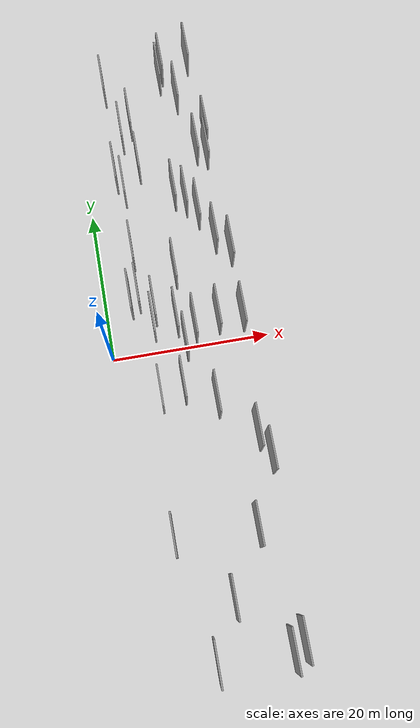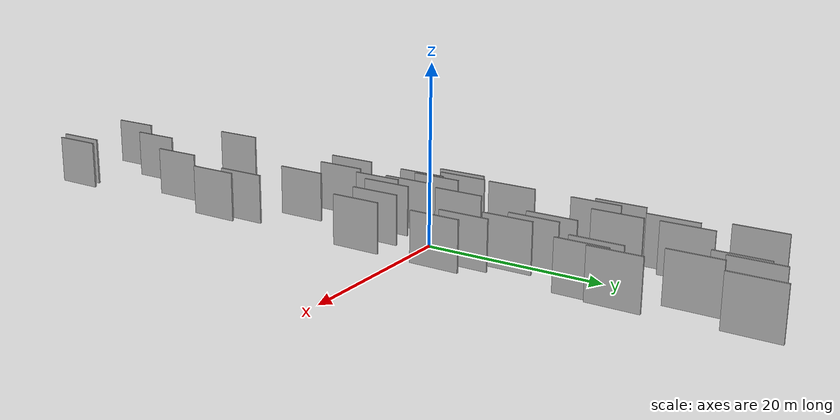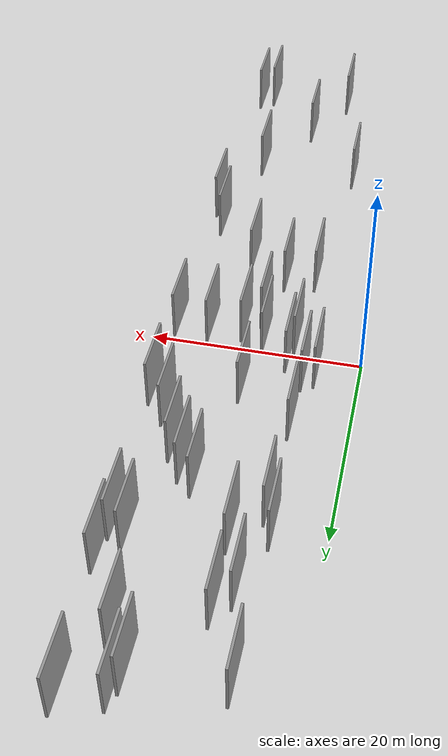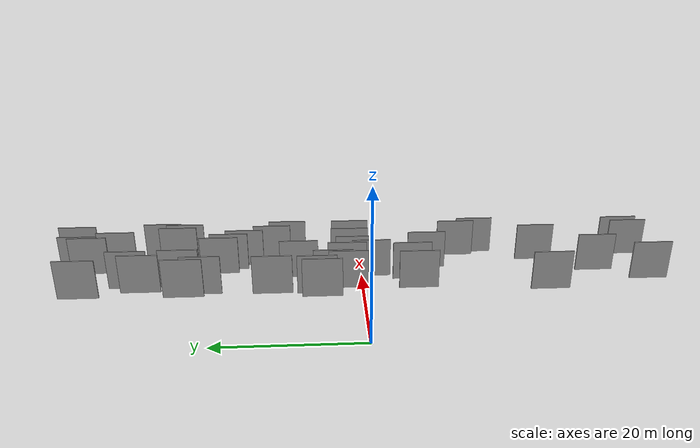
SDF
<sdf version="1.6">
 <world name="default">
  <scene>
   <sky><clouds><speed>12</speed></clouds></sky>
   <ambient>0.4 0.4 0.4 1</ambient>
   <background>0.7 0.7 0.7 1</background>
   <shadows>1</shadows>
  </scene>
  <gravity>0 0 -9.8066</gravity>
  <magnetic_field>6e-06 2.3e-05 -4.2e-05</magnetic_field>
  <physics default="0" name="default_physics" type="ode">
   <ode>
    <solver>
     <type>quick</type>
     <iters>10</iters>
     <sor>1.0</sor>
     <use_dynamic_moi_rescaling>0</use_dynamic_moi_rescaling>
    </solver>
    <constraints>
     <cfm>0</cfm>
     <erp>0.2</erp>
     <contact_max_correcting_vel>100</contact_max_correcting_vel>
     <contact_surface_layer>0.001</contact_surface_layer>
    </constraints>
   </ode>
   <max_step_size>0.004</max_step_size>
   <real_time_factor>1</real_time_factor>
   <real_time_update_rate>250</real_time_update_rate>
  </physics>
  <light name="sun" type="directional">
   <pose>0 0 10 0 0 0</pose>
   <diffuse>0.8 0.8 0.8 1</diffuse>
   <specular>0.2 0.2 0.2 1</specular>
   <attenuation>
    <range>1000</range>
    <constant>0.9</constant>
    <linear>0.01</linear>
    <quadratic>0.001</quadratic>
   </attenuation>
   <direction>-0.5 0.1 -0.9</direction>
  </light>
  <model name="grey_wall_1">
   <static>1</static>
   <pose>16.1266 -36.1026 5.0 0.000000 0.000000 1.570796</pose>
   <link name="link">
    <pose>0 0 2.50 0 0 0</pose>
    <collision name="collision"><geometry><box><size>5.00 0.2 5.00</size></box></geometry></collision>
    <visual name="visual">
     <cast_shadows>0</cast_shadows>
     <geometry><box><size>5.00 0.2 5.00</size></box></geometry>
     <material>
      <script>
       <uri>model://grey_wall/materials/scripts</uri>
       <uri>model://grey_wall/materials/textures</uri>
       <name>vrc/grey_wall</name>
      </script>
     </material>
    </visual>
   </link>
  </model>
  <model name="grey_wall_2">
   <static>1</static>
   <pose>16.7038 10.5861 5.0 0.000000 0.000000 1.570796</pose>
   <link name="link">
    <pose>0 0 2.50 0 0 0</pose>
    <collision name="collision"><geometry><box><size>5.00 0.2 5.00</size></box></geometry></collision>
    <visual name="visual">
     <cast_shadows>0</cast_shadows>
     <geometry><box><size>5.00 0.2 5.00</size></box></geometry>
     <material>
      <script>
       <uri>model://grey_wall/materials/scripts</uri>
       <uri>model://grey_wall/materials/textures</uri>
       <name>vrc/grey_wall</name>
      </script>
     </material>
    </visual>
   </link>
  </model>
  <model name="grey_wall_3">
   <static>1</static>
   <pose>4.0169 -23.0541 5.0 0.000000 0.000000 1.570796</pose>
   <link name="link">
    <pose>0 0 2.50 0 0 0</pose>
    <collision name="collision"><geometry><box><size>5.00 0.2 5.00</size></box></geometry></collision>
    <visual name="visual">
     <cast_shadows>0</cast_shadows>
     <geometry><box><size>5.00 0.2 5.00</size></box></geometry>
     <material>
      <script>
       <uri>model://grey_wall/materials/scripts</uri>
       <uri>model://grey_wall/materials/textures</uri>
       <name>vrc/grey_wall</name>
      </script>
     </material>
    </visual>
   </link>
  </model>
  <model name="grey_wall_4">
   <static>1</static>
   <pose>8.0384 -5.8655 5.0 0.000000 0.000000 1.570796</pose>
   <link name="link">
    <pose>0 0 2.50 0 0 0</pose>
    <collision name="collision"><geometry><box><size>5.00 0.2 5.00</size></box></geometry></collision>
    <visual name="visual">
     <cast_shadows>0</cast_shadows>
     <geometry><box><size>5.00 0.2 5.00</size></box></geometry>
     <material>
      <script>
       <uri>model://grey_wall/materials/scripts</uri>
       <uri>model://grey_wall/materials/textures</uri>
       <name>vrc/grey_wall</name>
      </script>
     </material>
    </visual>
   </link>
  </model>
  <model name="grey_wall_5">
   <static>1</static>
   <pose>13.6140 33.2601 5.0 0.000000 0.000000 1.570796</pose>
   <link name="link">
    <pose>0 0 2.50 0 0 0</pose>
    <collision name="collision"><geometry><box><size>5.00 0.2 5.00</size></box></geometry></collision>
    <visual name="visual">
     <cast_shadows>0</cast_shadows>
     <geometry><box><size>5.00 0.2 5.00</size></box></geometry>
     <material>
      <script>
       <uri>model://grey_wall/materials/scripts</uri>
       <uri>model://grey_wall/materials/textures</uri>
       <name>vrc/grey_wall</name>
      </script>
     </material>
    </visual>
   </link>
  </model>
  <model name="grey_wall_6">
   <static>1</static>
   <pose>11.8164 36.4727 5.0 0.000000 0.000000 1.570796</pose>
   <link name="link">
    <pose>0 0 2.50 0 0 0</pose>
    <collision name="collision"><geometry><box><size>5.00 0.2 5.00</size></box></geometry></collision>
    <visual name="visual">
     <cast_shadows>0</cast_shadows>
     <geometry><box><size>5.00 0.2 5.00</size></box></geometry>
     <material>
      <script>
       <uri>model://grey_wall/materials/scripts</uri>
       <uri>model://grey_wall/materials/textures</uri>
       <name>vrc/grey_wall</name>
      </script>
     </material>
    </visual>
   </link>
  </model>
  <model name="grey_wall_7">
   <static>1</static>
   <pose>13.5717 2.0889 5.0 0.000000 0.000000 1.570796</pose>
   <link name="link">
    <pose>0 0 2.50 0 0 0</pose>
    <collision name="collision"><geometry><box><size>5.00 0.2 5.00</size></box></geometry></collision>
    <visual name="visual">
     <cast_shadows>0</cast_shadows>
     <geometry><box><size>5.00 0.2 5.00</size></box></geometry>
     <material>
      <script>
       <uri>model://grey_wall/materials/scripts</uri>
       <uri>model://grey_wall/materials/textures</uri>
       <name>vrc/grey_wall</name>
      </script>
     </material>
    </visual>
   </link>
  </model>
  <model name="grey_wall_8">
   <static>1</static>
   <pose>14.9016 25.2825 5.0 0.000000 0.000000 1.570796</pose>
   <link name="link">
    <pose>0 0 2.50 0 0 0</pose>
    <collision name="collision"><geometry><box><size>5.00 0.2 5.00</size></box></geometry></collision>
    <visual name="visual">
     <cast_shadows>0</cast_shadows>
     <geometry><box><size>5.00 0.2 5.00</size></box></geometry>
     <material>
      <script>
       <uri>model://grey_wall/materials/scripts</uri>
       <uri>model://grey_wall/materials/textures</uri>
       <name>vrc/grey_wall</name>
      </script>
     </material>
    </visual>
   </link>
  </model>
  <model name="grey_wall_9">
   <static>1</static>
   <pose>4.8498 20.8579 5.0 0.000000 0.000000 1.570796</pose>
   <link name="link">
    <pose>0 0 2.50 0 0 0</pose>
    <collision name="collision"><geometry><box><size>5.00 0.2 5.00</size></box></geometry></collision>
    <visual name="visual">
     <cast_shadows>0</cast_shadows>
     <geometry><box><size>5.00 0.2 5.00</size></box></geometry>
     <material>
      <script>
       <uri>model://grey_wall/materials/scripts</uri>
       <uri>model://grey_wall/materials/textures</uri>
       <name>vrc/grey_wall</name>
      </script>
     </material>
    </visual>
   </link>
  </model>
  <model name="grey_wall_10">
   <static>1</static>
   <pose>11.6413 -8.1882 5.0 0.000000 0.000000 1.570796</pose>
   <link name="link">
    <pose>0 0 2.50 0 0 0</pose>
    <collision name="collision"><geometry><box><size>5.00 0.2 5.00</size></box></geometry></collision>
    <visual name="visual">
     <cast_shadows>0</cast_shadows>
     <geometry><box><size>5.00 0.2 5.00</size></box></geometry>
     <material>
      <script>
       <uri>model://grey_wall/materials/scripts</uri>
       <uri>model://grey_wall/materials/textures</uri>
       <name>vrc/grey_wall</name>
      </script>
     </material>
    </visual>
   </link>
  </model>
  <model name="grey_wall_11">
   <static>1</static>
   <pose>14.7778 -36.9344 5.0 0.000000 0.000000 1.570796</pose>
   <link name="link">
    <pose>0 0 2.50 0 0 0</pose>
    <collision name="collision"><geometry><box><size>5.00 0.2 5.00</size></box></geometry></collision>
    <visual name="visual">
     <cast_shadows>0</cast_shadows>
     <geometry><box><size>5.00 0.2 5.00</size></box></geometry>
     <material>
      <script>
       <uri>model://grey_wall/materials/scripts</uri>
       <uri>model://grey_wall/materials/textures</uri>
       <name>vrc/grey_wall</name>
      </script>
     </material>
    </visual>
   </link>
  </model>
  <model name="grey_wall_12">
   <static>1</static>
   <pose>4.3469 35.8482 5.0 0.000000 0.000000 1.570796</pose>
   <link name="link">
    <pose>0 0 2.50 0 0 0</pose>
    <collision name="collision"><geometry><box><size>5.00 0.2 5.00</size></box></geometry></collision>
    <visual name="visual">
     <cast_shadows>0</cast_shadows>
     <geometry><box><size>5.00 0.2 5.00</size></box></geometry>
     <material>
      <script>
       <uri>model://grey_wall/materials/scripts</uri>
       <uri>model://grey_wall/materials/textures</uri>
       <name>vrc/grey_wall</name>
      </script>
     </material>
    </visual>
   </link>
  </model>
  <model name="grey_wall_13">
   <static>1</static>
   <pose>8.5442 2.5810 5.0 0.000000 0.000000 1.570796</pose>
   <link name="link">
    <pose>0 0 2.50 0 0 0</pose>
    <collision name="collision"><geometry><box><size>5.00 0.2 5.00</size></box></geometry></collision>
    <visual name="visual">
     <cast_shadows>0</cast_shadows>
     <geometry><box><size>5.00 0.2 5.00</size></box></geometry>
     <material>
      <script>
       <uri>model://grey_wall/materials/scripts</uri>
       <uri>model://grey_wall/materials/textures</uri>
       <name>vrc/grey_wall</name>
      </script>
     </material>
    </visual>
   </link>
  </model>
  <model name="grey_wall_14">
   <static>1</static>
   <pose>15.6510 -12.7972 5.0 0.000000 0.000000 1.570796</pose>
   <link name="link">
    <pose>0 0 2.50 0 0 0</pose>
    <collision name="collision"><geometry><box><size>5.00 0.2 5.00</size></box></geometry></collision>
    <visual name="visual">
     <cast_shadows>0</cast_shadows>
     <geometry><box><size>5.00 0.2 5.00</size></box></geometry>
     <material>
      <script>
       <uri>model://grey_wall/materials/scripts</uri>
       <uri>model://grey_wall/materials/textures</uri>
       <name>vrc/grey_wall</name>
      </script>
     </material>
    </visual>
   </link>
  </model>
  <model name="grey_wall_15">
   <static>1</static>
   <pose>12.2945 18.1889 5.0 0.000000 0.000000 1.570796</pose>
   <link name="link">
    <pose>0 0 2.50 0 0 0</pose>
    <collision name="collision"><geometry><box><size>5.00 0.2 5.00</size></box></geometry></collision>
    <visual name="visual">
     <cast_shadows>0</cast_shadows>
     <geometry><box><size>5.00 0.2 5.00</size></box></geometry>
     <material>
      <script>
       <uri>model://grey_wall/materials/scripts</uri>
       <uri>model://grey_wall/materials/textures</uri>
       <name>vrc/grey_wall</name>
      </script>
     </material>
    </visual>
   </link>
  </model>
  <model name="grey_wall_16">
   <static>1</static>
   <pose>6.1222 4.4363 5.0 0.000000 0.000000 1.570796</pose>
   <link name="link">
    <pose>0 0 2.50 0 0 0</pose>
    <collision name="collision"><geometry><box><size>5.00 0.2 5.00</size></box></geometry></collision>
    <visual name="visual">
     <cast_shadows>0</cast_shadows>
     <geometry><box><size>5.00 0.2 5.00</size></box></geometry>
     <material>
      <script>
       <uri>model://grey_wall/materials/scripts</uri>
       <uri>model://grey_wall/materials/textures</uri>
       <name>vrc/grey_wall</name>
      </script>
     </material>
    </visual>
   </link>
  </model>
  <model name="grey_wall_17">
   <static>1</static>
   <pose>9.3733 8.8212 5.0 0.000000 0.000000 1.570796</pose>
   <link name="link">
    <pose>0 0 2.50 0 0 0</pose>
    <collision name="collision"><geometry><box><size>5.00 0.2 5.00</size></box></geometry></collision>
    <visual name="visual">
     <cast_shadows>0</cast_shadows>
     <geometry><box><size>5.00 0.2 5.00</size></box></geometry>
     <material>
      <script>
       <uri>model://grey_wall/materials/scripts</uri>
       <uri>model://grey_wall/materials/textures</uri>
       <name>vrc/grey_wall</name>
      </script>
     </material>
    </visual>
   </link>
  </model>
  <model name="grey_wall_18">
   <static>1</static>
   <pose>10.6159 1.4685 5.0 0.000000 0.000000 1.570796</pose>
   <link name="link">
    <pose>0 0 2.50 0 0 0</pose>
    <collision name="collision"><geometry><box><size>5.00 0.2 5.00</size></box></geometry></collision>
    <visual name="visual">
     <cast_shadows>0</cast_shadows>
     <geometry><box><size>5.00 0.2 5.00</size></box></geometry>
     <material>
      <script>
       <uri>model://grey_wall/materials/scripts</uri>
       <uri>model://grey_wall/materials/textures</uri>
       <name>vrc/grey_wall</name>
      </script>
     </material>
    </visual>
   </link>
  </model>
  <model name="grey_wall_19">
   <static>1</static>
   <pose>7.0047 30.3213 5.0 0.000000 0.000000 1.570796</pose>
   <link name="link">
    <pose>0 0 2.50 0 0 0</pose>
    <collision name="collision"><geometry><box><size>5.00 0.2 5.00</size></box></geometry></collision>
    <visual name="visual">
     <cast_shadows>0</cast_shadows>
     <geometry><box><size>5.00 0.2 5.00</size></box></geometry>
     <material>
      <script>
       <uri>model://grey_wall/materials/scripts</uri>
       <uri>model://grey_wall/materials/textures</uri>
       <name>vrc/grey_wall</name>
      </script>
     </material>
    </visual>
   </link>
  </model>
  <model name="grey_wall_20">
   <static>1</static>
   <pose>16.1116 24.4967 5.0 0.000000 0.000000 1.570796</pose>
   <link name="link">
    <pose>0 0 2.50 0 0 0</pose>
    <collision name="collision"><geometry><box><size>5.00 0.2 5.00</size></box></geometry></collision>
    <visual name="visual">
     <cast_shadows>0</cast_shadows>
     <geometry><box><size>5.00 0.2 5.00</size></box></geometry>
     <material>
      <script>
       <uri>model://grey_wall/materials/scripts</uri>
       <uri>model://grey_wall/materials/textures</uri>
       <name>vrc/grey_wall</name>
      </script>
     </material>
    </visual>
   </link>
  </model>
  <model name="grey_wall_21">
   <static>1</static>
   <pose>16.5672 1.9388 5.0 0.000000 0.000000 1.570796</pose>
   <link name="link">
    <pose>0 0 2.50 0 0 0</pose>
    <collision name="collision"><geometry><box><size>5.00 0.2 5.00</size></box></geometry></collision>
    <visual name="visual">
     <cast_shadows>0</cast_shadows>
     <geometry><box><size>5.00 0.2 5.00</size></box></geometry>
     <material>
      <script>
       <uri>model://grey_wall/materials/scripts</uri>
       <uri>model://grey_wall/materials/textures</uri>
       <name>vrc/grey_wall</name>
      </script>
     </material>
    </visual>
   </link>
  </model>
  <model name="grey_wall_22">
   <static>1</static>
   <pose>4.5802 12.0188 5.0 0.000000 0.000000 1.570796</pose>
   <link name="link">
    <pose>0 0 2.50 0 0 0</pose>
    <collision name="collision"><geometry><box><size>5.00 0.2 5.00</size></box></geometry></collision>
    <visual name="visual">
     <cast_shadows>0</cast_shadows>
     <geometry><box><size>5.00 0.2 5.00</size></box></geometry>
     <material>
      <script>
       <uri>model://grey_wall/materials/scripts</uri>
       <uri>model://grey_wall/materials/textures</uri>
       <name>vrc/grey_wall</name>
      </script>
     </material>
    </visual>
   </link>
  </model>
  <model name="grey_wall_23">
   <static>1</static>
   <pose>5.6724 28.5549 5.0 0.000000 0.000000 1.570796</pose>
   <link name="link">
    <pose>0 0 2.50 0 0 0</pose>
    <collision name="collision"><geometry><box><size>5.00 0.2 5.00</size></box></geometry></collision>
    <visual name="visual">
     <cast_shadows>0</cast_shadows>
     <geometry><box><size>5.00 0.2 5.00</size></box></geometry>
     <material>
      <script>
       <uri>model://grey_wall/materials/scripts</uri>
       <uri>model://grey_wall/materials/textures</uri>
       <name>vrc/grey_wall</name>
      </script>
     </material>
    </visual>
   </link>
  </model>
  <model name="grey_wall_24">
   <static>1</static>
   <pose>7.1501 23.9227 5.0 0.000000 0.000000 1.570796</pose>
   <link name="link">
    <pose>0 0 2.50 0 0 0</pose>
    <collision name="collision"><geometry><box><size>5.00 0.2 5.00</size></box></geometry></collision>
    <visual name="visual">
     <cast_shadows>0</cast_shadows>
     <geometry><box><size>5.00 0.2 5.00</size></box></geometry>
     <material>
      <script>
       <uri>model://grey_wall/materials/scripts</uri>
       <uri>model://grey_wall/materials/textures</uri>
       <name>vrc/grey_wall</name>
      </script>
     </material>
    </visual>
   </link>
  </model>
  <model name="grey_wall_25">
   <static>1</static>
   <pose>9.1840 -0.5984 5.0 0.000000 0.000000 1.570796</pose>
   <link name="link">
    <pose>0 0 2.50 0 0 0</pose>
    <collision name="collision"><geometry><box><size>5.00 0.2 5.00</size></box></geometry></collision>
    <visual name="visual">
     <cast_shadows>0</cast_shadows>
     <geometry><box><size>5.00 0.2 5.00</size></box></geometry>
     <material>
      <script>
       <uri>model://grey_wall/materials/scripts</uri>
       <uri>model://grey_wall/materials/textures</uri>
       <name>vrc/grey_wall</name>
      </script>
     </material>
    </visual>
   </link>
  </model>
  <model name="grey_wall_26">
   <static>1</static>
   <pose>3.4132 5.8115 5.0 0.000000 0.000000 1.570796</pose>
   <link name="link">
    <pose>0 0 2.50 0 0 0</pose>
    <collision name="collision"><geometry><box><size>5.00 0.2 5.00</size></box></geometry></collision>
    <visual name="visual">
     <cast_shadows>0</cast_shadows>
     <geometry><box><size>5.00 0.2 5.00</size></box></geometry>
     <material>
      <script>
       <uri>model://grey_wall/materials/scripts</uri>
       <uri>model://grey_wall/materials/textures</uri>
       <name>vrc/grey_wall</name>
      </script>
     </material>
    </visual>
   </link>
  </model>
  <model name="grey_wall_27">
   <static>1</static>
   <pose>11.0145 19.3353 5.0 0.000000 0.000000 1.570796</pose>
   <link name="link">
    <pose>0 0 2.50 0 0 0</pose>
    <collision name="collision"><geometry><box><size>5.00 0.2 5.00</size></box></geometry></collision>
    <visual name="visual">
     <cast_shadows>0</cast_shadows>
     <geometry><box><size>5.00 0.2 5.00</size></box></geometry>
     <material>
      <script>
       <uri>model://grey_wall/materials/scripts</uri>
       <uri>model://grey_wall/materials/textures</uri>
       <name>vrc/grey_wall</name>
      </script>
     </material>
    </visual>
   </link>
  </model>
  <model name="grey_wall_28">
   <static>1</static>
   <pose>4.0725 22.9733 5.0 0.000000 0.000000 1.570796</pose>
   <link name="link">
    <pose>0 0 2.50 0 0 0</pose>
    <collision name="collision"><geometry><box><size>5.00 0.2 5.00</size></box></geometry></collision>
    <visual name="visual">
     <cast_shadows>0</cast_shadows>
     <geometry><box><size>5.00 0.2 5.00</size></box></geometry>
     <material>
      <script>
       <uri>model://grey_wall/materials/scripts</uri>
       <uri>model://grey_wall/materials/textures</uri>
       <name>vrc/grey_wall</name>
      </script>
     </material>
    </visual>
   </link>
  </model>
  <model name="grey_wall_29">
   <static>1</static>
   <pose>5.7089 2.4742 5.0 0.000000 0.000000 1.570796</pose>
   <link name="link">
    <pose>0 0 2.50 0 0 0</pose>
    <collision name="collision"><geometry><box><size>5.00 0.2 5.00</size></box></geometry></collision>
    <visual name="visual">
     <cast_shadows>0</cast_shadows>
     <geometry><box><size>5.00 0.2 5.00</size></box></geometry>
     <material>
      <script>
       <uri>model://grey_wall/materials/scripts</uri>
       <uri>model://grey_wall/materials/textures</uri>
       <name>vrc/grey_wall</name>
      </script>
     </material>
    </visual>
   </link>
  </model>
  <model name="grey_wall_30">
   <static>1</static>
   <pose>15.9378 38.8845 5.0 0.000000 0.000000 1.570796</pose>
   <link name="link">
    <pose>0 0 2.50 0 0 0</pose>
    <collision name="collision"><geometry><box><size>5.00 0.2 5.00</size></box></geometry></collision>
    <visual name="visual">
     <cast_shadows>0</cast_shadows>
     <geometry><box><size>5.00 0.2 5.00</size></box></geometry>
     <material>
      <script>
       <uri>model://grey_wall/materials/scripts</uri>
       <uri>model://grey_wall/materials/textures</uri>
       <name>vrc/grey_wall</name>
      </script>
     </material>
    </visual>
   </link>
  </model>
  <model name="grey_wall_31">
   <static>1</static>
   <pose>16.6541 -15.6185 5.0 0.000000 0.000000 1.570796</pose>
   <link name="link">
    <pose>0 0 2.50 0 0 0</pose>
    <collision name="collision"><geometry><box><size>5.00 0.2 5.00</size></box></geometry></collision>
    <visual name="visual">
     <cast_shadows>0</cast_shadows>
     <geometry><box><size>5.00 0.2 5.00</size></box></geometry>
     <material>
      <script>
       <uri>model://grey_wall/materials/scripts</uri>
       <uri>model://grey_wall/materials/textures</uri>
       <name>vrc/grey_wall</name>
      </script>
     </material>
    </visual>
   </link>
  </model>
  <model name="grey_wall_32">
   <static>1</static>
   <pose>13.5509 -23.4916 5.0 0.000000 0.000000 1.570796</pose>
   <link name="link">
    <pose>0 0 2.50 0 0 0</pose>
    <collision name="collision"><geometry><box><size>5.00 0.2 5.00</size></box></geometry></collision>
    <visual name="visual">
     <cast_shadows>0</cast_shadows>
     <geometry><box><size>5.00 0.2 5.00</size></box></geometry>
     <material>
      <script>
       <uri>model://grey_wall/materials/scripts</uri>
       <uri>model://grey_wall/materials/textures</uri>
       <name>vrc/grey_wall</name>
      </script>
     </material>
    </visual>
   </link>
  </model>
  <model name="grey_wall_33">
   <static>1</static>
   <pose>15.0593 12.6275 5.0 0.000000 0.000000 1.570796</pose>
   <link name="link">
    <pose>0 0 2.50 0 0 0</pose>
    <collision name="collision"><geometry><box><size>5.00 0.2 5.00</size></box></geometry></collision>
    <visual name="visual">
     <cast_shadows>0</cast_shadows>
     <geometry><box><size>5.00 0.2 5.00</size></box></geometry>
     <material>
      <script>
       <uri>model://grey_wall/materials/scripts</uri>
       <uri>model://grey_wall/materials/textures</uri>
       <name>vrc/grey_wall</name>
      </script>
     </material>
    </visual>
   </link>
  </model>
  <model name="grey_wall_34">
   <static>1</static>
   <pose>4.4309 6.4372 5.0 0.000000 0.000000 1.570796</pose>
   <link name="link">
    <pose>0 0 2.50 0 0 0</pose>
    <collision name="collision"><geometry><box><size>5.00 0.2 5.00</size></box></geometry></collision>
    <visual name="visual">
     <cast_shadows>0</cast_shadows>
     <geometry><box><size>5.00 0.2 5.00</size></box></geometry>
     <material>
      <script>
       <uri>model://grey_wall/materials/scripts</uri>
       <uri>model://grey_wall/materials/textures</uri>
       <name>vrc/grey_wall</name>
      </script>
     </material>
    </visual>
   </link>
  </model>
  <model name="grey_wall_35">
   <static>1</static>
   <pose>16.4888 27.5898 5.0 0.000000 0.000000 1.570796</pose>
   <link name="link">
    <pose>0 0 2.50 0 0 0</pose>
    <collision name="collision"><geometry><box><size>5.00 0.2 5.00</size></box></geometry></collision>
    <visual name="visual">
     <cast_shadows>0</cast_shadows>
     <geometry><box><size>5.00 0.2 5.00</size></box></geometry>
     <material>
      <script>
       <uri>model://grey_wall/materials/scripts</uri>
       <uri>model://grey_wall/materials/textures</uri>
       <name>vrc/grey_wall</name>
      </script>
     </material>
    </visual>
   </link>
  </model>
  <model name="grey_wall_36">
   <static>1</static>
   <pose>13.5435 16.2440 5.0 0.000000 0.000000 1.570796</pose>
   <link name="link">
    <pose>0 0 2.50 0 0 0</pose>
    <collision name="collision"><geometry><box><size>5.00 0.2 5.00</size></box></geometry></collision>
    <visual name="visual">
     <cast_shadows>0</cast_shadows>
     <geometry><box><size>5.00 0.2 5.00</size></box></geometry>
     <material>
      <script>
       <uri>model://grey_wall/materials/scripts</uri>
       <uri>model://grey_wall/materials/textures</uri>
       <name>vrc/grey_wall</name>
      </script>
     </material>
    </visual>
   </link>
  </model>
  <model name="grey_wall_37">
   <static>1</static>
   <pose>6.4527 -36.8047 5.0 0.000000 0.000000 1.570796</pose>
   <link name="link">
    <pose>0 0 2.50 0 0 0</pose>
    <collision name="collision"><geometry><box><size>5.00 0.2 5.00</size></box></geometry></collision>
    <visual name="visual">
     <cast_shadows>0</cast_shadows>
     <geometry><box><size>5.00 0.2 5.00</size></box></geometry>
     <material>
      <script>
       <uri>model://grey_wall/materials/scripts</uri>
       <uri>model://grey_wall/materials/textures</uri>
       <name>vrc/grey_wall</name>
      </script>
     </material>
    </visual>
   </link>
  </model>
  <model name="grey_wall_38">
   <static>1</static>
   <pose>9.4696 -30.6101 5.0 0.000000 0.000000 1.570796</pose>
   <link name="link">
    <pose>0 0 2.50 0 0 0</pose>
    <collision name="collision"><geometry><box><size>5.00 0.2 5.00</size></box></geometry></collision>
    <visual name="visual">
     <cast_shadows>0</cast_shadows>
     <geometry><box><size>5.00 0.2 5.00</size></box></geometry>
     <material>
      <script>
       <uri>model://grey_wall/materials/scripts</uri>
       <uri>model://grey_wall/materials/textures</uri>
       <name>vrc/grey_wall</name>
      </script>
     </material>
    </visual>
   </link>
  </model>
  <model name="grey_wall_39">
   <static>1</static>
   <pose>5.2627 -6.4195 5.0 0.000000 0.000000 1.570796</pose>
   <link name="link">
    <pose>0 0 2.50 0 0 0</pose>
    <collision name="collision"><geometry><box><size>5.00 0.2 5.00</size></box></geometry></collision>
    <visual name="visual">
     <cast_shadows>0</cast_shadows>
     <geometry><box><size>5.00 0.2 5.00</size></box></geometry>
     <material>
      <script>
       <uri>model://grey_wall/materials/scripts</uri>
       <uri>model://grey_wall/materials/textures</uri>
       <name>vrc/grey_wall</name>
      </script>
     </material>
    </visual>
   </link>
  </model>
  <model name="grey_wall_40">
   <static>1</static>
   <pose>12.3256 37.8524 5.0 0.000000 0.000000 1.570796</pose>
   <link name="link">
    <pose>0 0 2.50 0 0 0</pose>
    <collision name="collision"><geometry><box><size>5.00 0.2 5.00</size></box></geometry></collision>
    <visual name="visual">
     <cast_shadows>0</cast_shadows>
     <geometry><box><size>5.00 0.2 5.00</size></box></geometry>
     <material>
      <script>
       <uri>model://grey_wall/materials/scripts</uri>
       <uri>model://grey_wall/materials/textures</uri>
       <name>vrc/grey_wall</name>
      </script>
     </material>
    </visual>
   </link>
  </model>
 </world>
</sdf>
